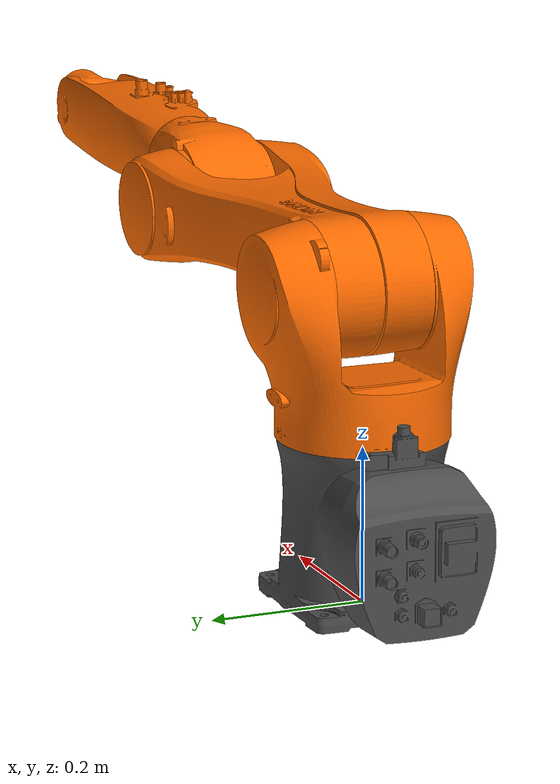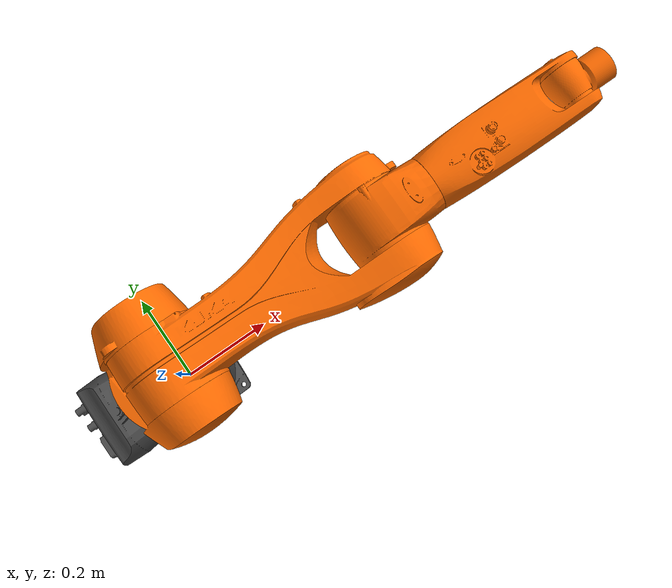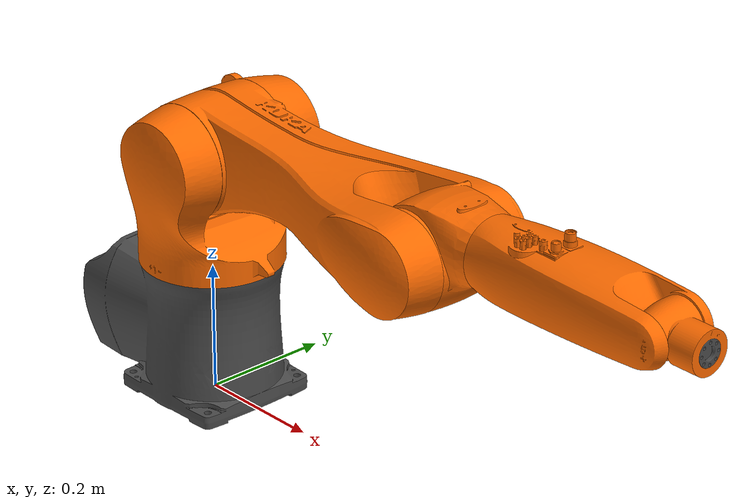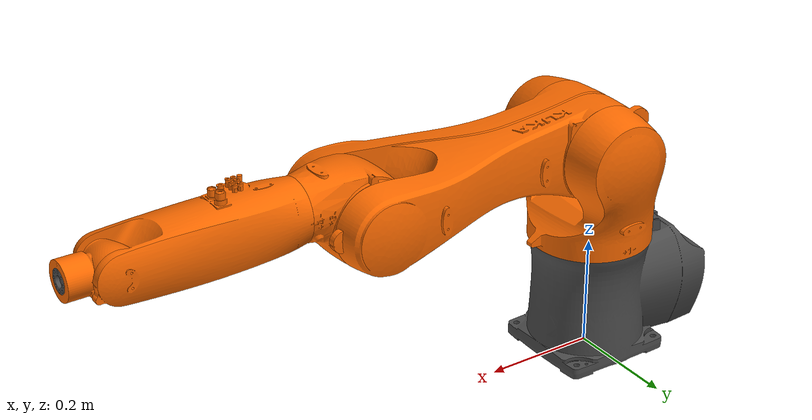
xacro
<?xml version="1.0"?>
<robot name="kuka_kr6r900sixx" xmlns:xacro="http://wiki.ros.org/xacro">

  <!-- ── Inline stubs replacing kuka_resources/urdf/common_materials.xacro ── -->
  <material name="kuka_orange">
    <color rgba="1.0 0.42 0.0 1.0"/>
  </material>
  <material name="kuka_pedestal">
    <color rgba="0.3 0.3 0.3 1.0"/>
  </material>
  <xacro:macro name="material_kuka_orange">
    <material name="kuka_orange"/>
  </xacro:macro>
  <xacro:macro name="material_kuka_pedestal">
    <material name="kuka_pedestal"/>
  </xacro:macro>

  <!-- ── Robot links ── -->
  <xacro:property name="mesh_root"
    value="/home/shahar/Desktop/phase4/VLATraining/sim/assets/urdf/kuka_experimental/kuka_kr6_support/meshes"/>

  <link name="base_link">
    <visual>
      <origin xyz="0 0 0" rpy="0 0 0"/>
      <geometry>
        <mesh filename="${mesh_root}/kr6_agilus/visual/base_link.dae"/>
      </geometry>
      <xacro:material_kuka_pedestal/>
    </visual>
    <collision>
      <origin xyz="0 0 0" rpy="0 0 0"/>
      <geometry>
        <mesh filename="${mesh_root}/kr6_agilus/collision/base_link.stl"/>
      </geometry>
    </collision>
  </link>

  <link name="link_1">
    <visual>
      <origin xyz="0 0 0" rpy="0 0 0"/>
      <geometry>
        <mesh filename="${mesh_root}/kr6_agilus/visual/link_1.dae"/>
      </geometry>
      <xacro:material_kuka_orange/>
    </visual>
    <collision>
      <origin xyz="0 0 0" rpy="0 0 0"/>
      <geometry>
        <mesh filename="${mesh_root}/kr6_agilus/collision/link_1.stl"/>
      </geometry>
    </collision>
  </link>

  <link name="link_2">
    <visual>
      <origin xyz="0 0 0" rpy="0 0 0"/>
      <geometry>
        <mesh filename="${mesh_root}/kr6r900sixx/visual/link_2.dae"/>
      </geometry>
      <xacro:material_kuka_orange/>
    </visual>
    <collision>
      <origin xyz="0 0 0" rpy="0 0 0"/>
      <geometry>
        <mesh filename="${mesh_root}/kr6r900sixx/collision/link_2.stl"/>
      </geometry>
    </collision>
  </link>

  <link name="link_3">
    <visual>
      <origin xyz="0 0 0" rpy="0 0 0"/>
      <geometry>
        <mesh filename="${mesh_root}/kr6_agilus/visual/link_3.dae"/>
      </geometry>
      <xacro:material_kuka_orange/>
    </visual>
    <collision>
      <origin xyz="0 0 0" rpy="0 0 0"/>
      <geometry>
        <mesh filename="${mesh_root}/kr6_agilus/collision/link_3.stl"/>
      </geometry>
    </collision>
  </link>

  <link name="link_4">
    <visual>
      <origin xyz="0 0 0" rpy="0 0 0"/>
      <geometry>
        <mesh filename="${mesh_root}/kr6r900sixx/visual/link_4.dae"/>
      </geometry>
      <xacro:material_kuka_orange/>
    </visual>
    <collision>
      <origin xyz="0 0 0" rpy="0 0 0"/>
      <geometry>
        <mesh filename="${mesh_root}/kr6r900sixx/collision/link_4.stl"/>
      </geometry>
    </collision>
  </link>

  <link name="link_5">
    <visual>
      <origin xyz="0 0 0" rpy="0 0 0"/>
      <geometry>
        <mesh filename="${mesh_root}/kr6_agilus/visual/link_5.dae"/>
      </geometry>
      <xacro:material_kuka_orange/>
    </visual>
    <collision>
      <origin xyz="0 0 0" rpy="0 0 0"/>
      <geometry>
        <mesh filename="${mesh_root}/kr6_agilus/collision/link_5.stl"/>
      </geometry>
    </collision>
  </link>

  <link name="link_6">
    <visual>
      <origin xyz="0 0 0" rpy="0 0 0"/>
      <geometry>
        <mesh filename="${mesh_root}/kr6_agilus/visual/link_6.dae"/>
      </geometry>
      <xacro:material_kuka_pedestal/>
    </visual>
    <collision>
      <origin xyz="0 0 0" rpy="0 0 0"/>
      <geometry>
        <mesh filename="${mesh_root}/kr6_agilus/collision/link_6.stl"/>
      </geometry>
    </collision>
  </link>

  <!-- Flange + tool frames -->
  <link name="flange"/>
  <link name="base"/>
  <link name="tool0"/>

  <!-- ── Joints ── -->
  <joint name="joint_a1" type="revolute">
    <origin xyz="0 0 0.400" rpy="0 0 0"/>
    <parent link="base_link"/>
    <child link="link_1"/>
    <axis xyz="0 0 -1"/>
    <limit effort="0" lower="${-radians(170)}" upper="${radians(170)}" velocity="${radians(360)}"/>
  </joint>

  <joint name="joint_a2" type="revolute">
    <origin xyz="0.025 0 0" rpy="0 0 0"/>
    <parent link="link_1"/>
    <child link="link_2"/>
    <axis xyz="0 1 0"/>
    <limit effort="0" lower="${-radians(190)}" upper="${radians(45)}" velocity="${radians(300)}"/>
  </joint>

  <joint name="joint_a3" type="revolute">
    <origin xyz="0.455 0 0" rpy="0 0 0"/>
    <parent link="link_2"/>
    <child link="link_3"/>
    <axis xyz="0 1 0"/>
    <limit effort="0" lower="${-radians(120)}" upper="${radians(156)}" velocity="${radians(360)}"/>
  </joint>

  <joint name="joint_a4" type="revolute">
    <origin xyz="0 0 0.035" rpy="0 0 0"/>
    <parent link="link_3"/>
    <child link="link_4"/>
    <axis xyz="-1 0 0"/>
    <limit effort="0" lower="${-radians(185)}" upper="${radians(185)}" velocity="${radians(381)}"/>
  </joint>

  <joint name="joint_a5" type="revolute">
    <origin xyz="0.420 0 0" rpy="0 0 0"/>
    <parent link="link_4"/>
    <child link="link_5"/>
    <axis xyz="0 1 0"/>
    <limit effort="0" lower="${-radians(120)}" upper="${radians(120)}" velocity="${radians(388)}"/>
  </joint>

  <joint name="joint_a6" type="revolute">
    <origin xyz="0.080 0 0" rpy="0 0 0"/>
    <parent link="link_5"/>
    <child link="link_6"/>
    <axis xyz="-1 0 0"/>
    <limit effort="0" lower="${-radians(350)}" upper="${radians(350)}" velocity="${radians(615)}"/>
  </joint>

  <joint name="joint_a6-flange" type="fixed">
    <parent link="link_6"/>
    <child link="flange"/>
    <origin xyz="0 0 0" rpy="0 0 0"/>
  </joint>

  <joint name="base_link-base" type="fixed">
    <origin xyz="0 0 0" rpy="0 0 0"/>
    <parent link="base_link"/>
    <child link="base"/>
  </joint>

  <joint name="flange-tool0" type="fixed">
    <parent link="flange"/>
    <child link="tool0"/>
    <origin xyz="0 0 0" rpy="0 ${radians(90)} 0"/>
  </joint>

</robot>
